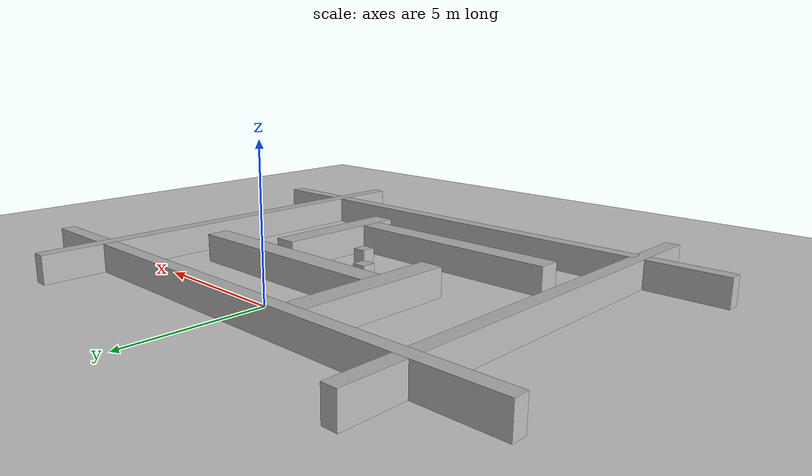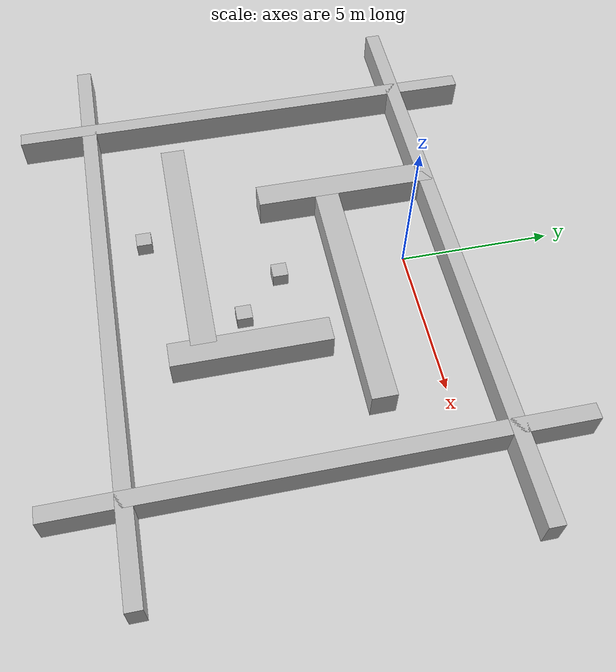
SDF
<sdf version='1.10'>
  <world name='empty'>
    <physics name='1ms' type='ignored'>
      <max_step_size>0.001</max_step_size>
      <real_time_factor>1</real_time_factor>
      <real_time_update_rate>1000</real_time_update_rate>
    </physics>
    <plugin name='gz::sim::systems::Physics' filename='gz-sim-physics-system'/>
    <plugin name='gz::sim::systems::UserCommands' filename='gz-sim-user-commands-system'/>
    <plugin name='gz::sim::systems::SceneBroadcaster' filename='gz-sim-scene-broadcaster-system'/>
    <plugin name='gz::sim::systems::Sensors' filename='gz-sim-sensors-system'>
      <render_engine>ogre2</render_engine>
    </plugin>
    <plugin name='gz::sim::systems::Contact' filename='gz-sim-contact-system'/>
    <gravity>0 0 -9.8000000000000007</gravity>
    <magnetic_field>5.5644999999999998e-06 2.2875799999999999e-05 -4.2388400000000002e-05</magnetic_field>
    <atmosphere type='adiabatic'/>
    <scene>
      <ambient>0.400000006 0.400000006 0.400000006 1</ambient>
      <background>0.699999988 0.699999988 0.699999988 1</background>
      <shadows>true</shadows>
    </scene>
    <model name='ground_plane'>
      <static>true</static>
      <link name='link'>
        <collision name='collision'>
          <geometry>
            <plane>
              <normal>0 0 1</normal>
              <size>100 100</size>
            </plane>
          </geometry>
          <surface>
            <friction>
              <ode>
                <mu>100</mu>
                <mu2>100</mu2>
              </ode>
            </friction>
            <bounce/>
            <contact/>
          </surface>
        </collision>
        <visual name='visual'>
          <geometry>
            <plane>
              <normal>0 0 1</normal>
              <size>100 100</size>
            </plane>
          </geometry>
          <material>
            <ambient>0.800000012 0.800000012 0.800000012 1</ambient>
            <diffuse>0.800000012 0.800000012 0.800000012 1</diffuse>
            <specular>0.800000012 0.800000012 0.800000012 1</specular>
          </material>
        </visual>
        <pose>0 0 0 0 0 0</pose>
        <inertial>
          <pose>0 0 0 0 0 0</pose>
          <mass>1</mass>
          <inertia>
            <ixx>1</ixx>
            <ixy>0</ixy>
            <ixz>0</ixz>
            <iyy>1</iyy>
            <iyz>0</iyz>
            <izz>1</izz>
          </inertia>
        </inertial>
        <enable_wind>false</enable_wind>
      </link>
      <pose>0 0 0 0 0 0</pose>
      <self_collide>false</self_collide>
    </model>
    <model name="outer_wall_top">
      <pose>0.0 1.4 0.5 0.0 0.0 0.0</pose>
      <link name="link">
        <collision name="col">
          <geometry>
            <box>
              <size>20 0.5 1</size>
            </box>
          </geometry>
        </collision>
        <visual name="vis">
          <geometry>
            <box>
              <size>20 0.5 1</size>
            </box>
          </geometry>
        </visual>
      </link>
      <static>true</static>
    </model>
    <model name="outer_wall_bottom">
      <pose>0.0 -9.799999999999999 0.5 0.0 0.0 0.0</pose>
      <link name="link">
        <collision name="col">
          <geometry>
            <box>
              <size>20 0.5 1</size>
            </box>
          </geometry>
        </collision>
        <visual name="vis">
          <geometry>
            <box>
              <size>20 0.5 1</size>
            </box>
          </geometry>
        </visual>
      </link>
      <static>true</static>
    </model>
    <model name="outer_wall_left">
      <pose>-7.0 -4.199999999999999 0.5 0.0 0.0 0.0</pose>
      <link name="link">
        <collision name="col">
          <geometry>
            <box>
              <size>0.5 16 1</size>
            </box>
          </geometry>
        </collision>
        <visual name="vis">
          <geometry>
            <box>
              <size>0.5 16 1</size>
            </box>
          </geometry>
        </visual>
      </link>
      <static>true</static>
    </model>
    <model name="outer_wall_right">
      <pose>7.0 -4.199999999999999 0.5 0.0 0.0 0.0</pose>
      <link name="link">
        <collision name="col">
          <geometry>
            <box>
              <size>0.5 16 1</size>
            </box>
          </geometry>
        </collision>
        <visual name="vis">
          <geometry>
            <box>
              <size>0.5 16 1</size>
            </box>
          </geometry>
        </visual>
      </link>
      <static>true</static>
    </model>
    <model name="inner_vert_1">
      <pose>-2.8 -1.4 0.5 0.0 0.0 0.0</pose>
      <link name="link">
        <collision name="col">
          <geometry>
            <box>
              <size>0.8 6 1</size>
            </box>
          </geometry>
        </collision>
        <visual name="vis">
          <geometry>
            <box>
              <size>0.8 6 1</size>
            </box>
          </geometry>
        </visual>
      </link>
      <static>true</static>
    </model>
    <model name="inner_horiz_1">
      <pose>1.4 -2.0999999999999996 0.5 0.0 0.0 0.0</pose>
      <link name="link">
        <collision name="col">
          <geometry>
            <box>
              <size>8 0.8 1</size>
            </box>
          </geometry>
        </collision>
        <visual name="vis">
          <geometry>
            <box>
              <size>8 0.8 1</size>
            </box>
          </geometry>
        </visual>
      </link>
      <static>true</static>
    </model>
    <model name="inner_vert_2">
      <pose>2.8 -5.6 0.5 0.0 0.0 0.0</pose>
      <link name="link">
        <collision name="col">
          <geometry>
            <box>
              <size>0.8 5 1</size>
            </box>
          </geometry>
        </collision>
        <visual name="vis">
          <geometry>
            <box>
              <size>0.8 5 1</size>
            </box>
          </geometry>
        </visual>
      </link>
      <static>true</static>
    </model>
    <model name="inner_horiz_2">
      <pose>-1.4 -7.0 0.5 0.0 0.0 0.0</pose>
      <link name="link">
        <collision name="col">
          <geometry>
            <box>
              <size>8 0.8 1</size>
            </box>
          </geometry>
        </collision>
        <visual name="vis">
          <geometry>
            <box>
              <size>8 0.8 1</size>
            </box>
          </geometry>
        </visual>
      </link>
      <static>true</static>
    </model>
    <model name="moving_box_1">
      <pose>0.0 -4.199999999999999 0.25 0.0 0.0 0.0</pose>
      <link name="link">
        <collision name="col">
          <geometry>
            <box>
              <size>0.5 0.5 0.5</size>
            </box>
          </geometry>
        </collision>
        <visual name="vis">
          <geometry>
            <box>
              <size>0.5 0.5 0.5</size>
            </box>
          </geometry>
        </visual>
      </link>
      <static>false</static>
    </model>
    <model name="moving_box_2">
      <pose>1.4 -5.6 0.25 0.0 0.0 0.0</pose>
      <link name="link">
        <collision name="col">
          <geometry>
            <box>
              <size>0.5 0.5 0.5</size>
            </box>
          </geometry>
        </collision>
        <visual name="vis">
          <geometry>
            <box>
              <size>0.5 0.5 0.5</size>
            </box>
          </geometry>
        </visual>
      </link>
      <static>false</static>
    </model>
    <model name="moving_box_3">
      <pose>-2.0999999999999996 -8.399999999999999 0.25 0.0 0.0 0.0</pose>
      <link name="link">
        <collision name="col">
          <geometry>
            <box>
              <size>0.5 0.5 0.5</size>
            </box>
          </geometry>
        </collision>
        <visual name="vis">
          <geometry>
            <box>
              <size>0.5 0.5 0.5</size>
            </box>
          </geometry>
        </visual>
      </link>
      <static>false</static>
    </model>
    <light name='sun' type='directional'>
      <pose>0 0 10 0 0 0</pose>
      <cast_shadows>true</cast_shadows>
      <intensity>1</intensity>
      <direction>-0.5 0.10000000000000001 -0.90000000000000002</direction>
      <diffuse>0.800000012 0.800000012 0.800000012 1</diffuse>
      <specular>0.200000003 0.200000003 0.200000003 1</specular>
      <attenuation>
        <range>1000</range>
        <linear>0.01</linear>
        <constant>0.90000000000000002</constant>
        <quadratic>0.001</quadratic>
      </attenuation>
      <spot>
        <inner_angle>0</inner_angle>
        <outer_angle>0</outer_angle>
        <falloff>0</falloff>
      </spot>
    </light>
  </world>
</sdf>
